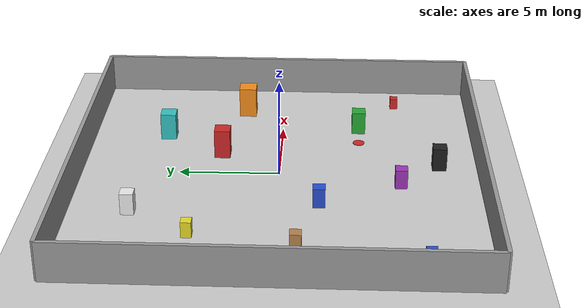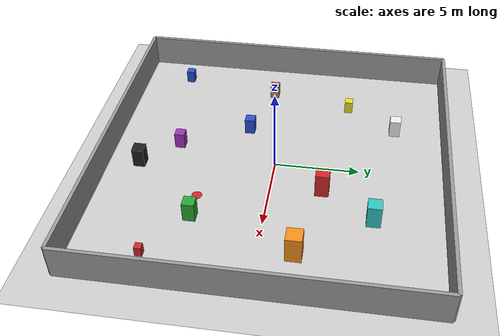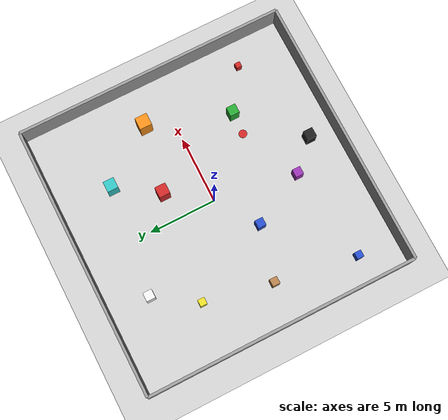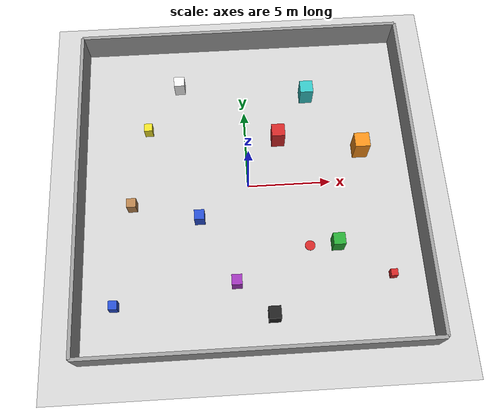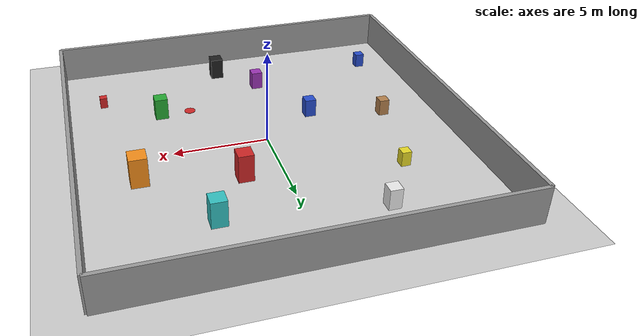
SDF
<?xml version="1.0" ?>
<sdf version="1.6">
  <world name="obstacle_world">

    <include>
      <uri>model://ground_plane</uri>
    </include>

    <include>
      <uri>model://sun</uri>
    </include>

    <physics name='default_physics' default='0' type='ode'>
      <gravity>0 0 -9.8066</gravity>
      <ode>
        <solver>
          <type>quick</type>
          <iters>10</iters>
          <sor>1.3</sor>
          <use_dynamic_moi_rescaling>0</use_dynamic_moi_rescaling>
        </solver>
        <constraints>
          <cfm>0</cfm>
          <erp>0.2</erp>
          <contact_max_correcting_vel>100</contact_max_correcting_vel>
          <contact_surface_layer>0.001</contact_surface_layer>
        </constraints>
      </ode>
      <max_step_size>0.004</max_step_size>
      <real_time_factor>1</real_time_factor>
      <real_time_update_rate>250</real_time_update_rate>
    </physics>

    <model name="north_wall">
      <pose>0 10 1 0 0 0</pose>
      <static>true</static>
      <link name="link">
        <collision name="collision">
          <geometry>
            <box>
              <size>20 0.2 2</size>
            </box>
          </geometry>
        </collision>
        <visual name="visual">
          <geometry>
            <box>
              <size>20 0.2 2</size>
            </box>
          </geometry>
          <material>
            <script>
              <name>Gazebo/Grey</name>
            </script>
          </material>
        </visual>
      </link>
    </model>

    <model name="south_wall">
      <pose>0 -10 1 0 0 0</pose>
      <static>true</static>
      <link name="link">
        <collision name="collision">
          <geometry>
            <box>
              <size>20 0.2 2</size>
            </box>
          </geometry>
        </collision>
        <visual name="visual">
          <geometry>
            <box>
              <size>20 0.2 2</size>
            </box>
          </geometry>
          <material>
            <script>
              <name>Gazebo/Grey</name>
            </script>
          </material>
        </visual>
      </link>
    </model>

    <model name="east_wall">
      <pose>10 0 1 0 0 0</pose>
      <static>true</static>
      <link name="link">
        <collision name="collision">
          <geometry>
            <box>
              <size>0.2 20 2</size>
            </box>
          </geometry>
        </collision>
        <visual name="visual">
          <geometry>
            <box>
              <size>0.2 20 2</size>
            </box>
          </geometry>
          <material>
            <script>
              <name>Gazebo/Grey</name>
            </script>
          </material>
        </visual>
      </link>
    </model>

    <model name="west_wall">
      <pose>-10 0 1 0 0 0</pose>
      <static>true</static>
      <link name="link">
        <collision name="collision">
          <geometry>
            <box>
              <size>0.2 20 2</size>
            </box>
          </geometry>
        </collision>
        <visual name="visual">
          <geometry>
            <box>
              <size>0.2 20 2</size>
            </box>
          </geometry>
          <material>
            <script>
              <name>Gazebo/Grey</name>
            </script>
          </material>
        </visual>
      </link>
    </model>

    <model name="obstacle_1">
      <pose>2 3 0.75 0 0 0</pose>
      <static>true</static>
      <link name="link">
        <collision name="collision">
          <geometry>
            <box>
              <size>0.8 0.8 1.5</size>
            </box>
          </geometry>
        </collision>
        <visual name="visual">
          <geometry>
            <box>
              <size>0.8 0.8 1.5</size>
            </box>
          </geometry>
          <material>
            <script>
              <name>Gazebo/Red</name>
            </script>
          </material>
        </visual>
      </link>
    </model>

    <model name="obstacle_2">
      <pose>-3 -2 0.5 0 0 0</pose>
      <static>true</static>
      <link name="link">
        <collision name="collision">
          <geometry>
            <box>
              <size>0.6 0.6 1.0</size>
            </box>
          </geometry>
        </collision>
        <visual name="visual">
          <geometry>
            <box>
              <size>0.6 0.6 1.0</size>
            </box>
          </geometry>
          <material>
            <script>
              <name>Gazebo/Blue</name>
            </script>
          </material>
        </visual>
      </link>
    </model>

    <model name="obstacle_3">
      <pose>5 -4 0.6 0 0 0</pose>
      <static>true</static>
      <link name="link">
        <collision name="collision">
          <geometry>
            <box>
              <size>0.7 0.7 1.2</size>
            </box>
          </geometry>
        </collision>
        <visual name="visual">
          <geometry>
            <box>
              <size>0.7 0.7 1.2</size>
            </box>
          </geometry>
          <material>
            <script>
              <name>Gazebo/Green</name>
            </script>
          </material>
        </visual>
      </link>
    </model>

    <model name="obstacle_4">
      <pose>-6 4 0.4 0 0 0</pose>
      <static>true</static>
      <link name="link">
        <collision name="collision">
          <geometry>
            <box>
              <size>0.5 0.5 0.8</size>
            </box>
          </geometry>
        </collision>
        <visual name="visual">
          <geometry>
            <box>
              <size>0.5 0.5 0.8</size>
            </box>
          </geometry>
          <material>
            <script>
              <name>Gazebo/Yellow</name>
            </script>
          </material>
        </visual>
      </link>
    </model>

    <model name="obstacle_5">
      <pose>7 2 0.8 0 0 0</pose>
      <static>true</static>
      <link name="link">
        <collision name="collision">
          <geometry>
            <box>
              <size>0.9 0.9 1.6</size>
            </box>
          </geometry>
        </collision>
        <visual name="visual">
          <geometry>
            <box>
              <size>0.9 0.9 1.6</size>
            </box>
          </geometry>
          <material>
            <script>
              <name>Gazebo/Orange</name>
            </script>
          </material>
        </visual>
      </link>
    </model>

    <model name="obstacle_6">
      <pose>-1 -6 0.5 0 0 0</pose>
      <static>true</static>
      <link name="link">
        <collision name="collision">
          <geometry>
            <box>
              <size>0.6 0.6 1.0</size>
            </box>
          </geometry>
        </collision>
        <visual name="visual">
          <geometry>
            <box>
              <size>0.6 0.6 1.0</size>
            </box>
          </geometry>
          <material>
            <script>
              <name>Gazebo/Purple</name>
            </script>
          </material>
        </visual>
      </link>
    </model>

    <model name="obstacle_7">
      <pose>4 6 0.7 0 0 0</pose>
      <static>true</static>
      <link name="link">
        <collision name="collision">
          <geometry>
            <box>
              <size>0.8 0.8 1.4</size>
            </box>
          </geometry>
        </collision>
        <visual name="visual">
          <geometry>
            <box>
              <size>0.8 0.8 1.4</size>
            </box>
          </geometry>
          <material>
            <script>
              <name>Gazebo/Turquoise</name>
            </script>
          </material>
        </visual>
      </link>
    </model>

    <model name="obstacle_8">
      <pose>-7 -1 0.45 0 0 0</pose>
      <static>true</static>
      <link name="link">
        <collision name="collision">
          <geometry>
            <box>
              <size>0.55 0.55 0.9</size>
            </box>
          </geometry>
        </collision>
        <visual name="visual">
          <geometry>
            <box>
              <size>0.55 0.55 0.9</size>
            </box>
          </geometry>
          <material>
            <script>
              <name>Gazebo/Wood</name>
            </script>
          </material>
        </visual>
      </link>
    </model>

    <model name="obstacle_9">
      <pose>1 -8 0.6 0 0 0</pose>
      <static>true</static>
      <link name="link">
        <collision name="collision">
          <geometry>
            <box>
              <size>0.7 0.7 1.2</size>
            </box>
          </geometry>
        </collision>
        <visual name="visual">
          <geometry>
            <box>
              <size>0.7 0.7 1.2</size>
            </box>
          </geometry>
          <material>
            <script>
              <name>Gazebo/Black</name>
            </script>
          </material>
        </visual>
      </link>
    </model>

    <model name="obstacle_10">
      <pose>-4 7 0.55 0 0 0</pose>
      <static>true</static>
      <link name="link">
        <collision name="collision">
          <geometry>
            <box>
              <size>0.65 0.65 1.1</size>
            </box>
          </geometry>
        </collision>
        <visual name="visual">
          <geometry>
            <box>
              <size>0.65 0.65 1.1</size>
            </box>
          </geometry>
          <material>
            <script>
              <name>Gazebo/White</name>
            </script>
          </material>
        </visual>
      </link>
    </model>

    <model name="obstacle_11">
      <pose>8 -6 0.3 0 0 0</pose>
      <static>true</static>
      <link name="link">
        <collision name="collision">
          <geometry>
            <box>
              <size>0.4 0.4 0.6</size>
            </box>
          </geometry>
        </collision>
        <visual name="visual">
          <geometry>
            <box>
              <size>0.4 0.4 0.6</size>
            </box>
          </geometry>
          <material>
            <script>
              <name>Gazebo/Red</name>
            </script>
          </material>
        </visual>
      </link>
    </model>

    <model name="obstacle_12">
      <pose>-8 -7 0.4 0 0 0</pose>
      <static>true</static>
      <link name="link">
        <collision name="collision">
          <geometry>
            <box>
              <size>0.5 0.5 0.8</size>
            </box>
          </geometry>
        </collision>
        <visual name="visual">
          <geometry>
            <box>
              <size>0.5 0.5 0.8</size>
            </box>
          </geometry>
          <material>
            <script>
              <name>Gazebo/Blue</name>
            </script>
          </material>
        </visual>
      </link>
    </model>

    <model name="target_marker">
      <pose>3.4 -4.0 0.1 0 0 0</pose>
      <static>true</static>
      <link name="link">
        <collision name="collision">
          <geometry>
            <cylinder>
              <radius>0.3</radius>
              <length>0.02</length>
            </cylinder>
          </geometry>
        </collision>
        <visual name="visual">
          <geometry>
            <cylinder>
              <radius>0.3</radius>
              <length>0.02</length>
            </cylinder>
          </geometry>
          <material>
            <script>
              <name>Gazebo/Red</name>
            </script>
          </material>
        </visual>
      </link>
    </model>

    <light name='user_directional_light_0' type='directional'>
      <pose frame=''>0 0 10 0 -0 0</pose>
      <diffuse>0.5 0.5 0.5 1</diffuse>
      <specular>0.1 0.1 0.1 1</specular>
      <direction>0.1 0.1 -0.9</direction>
      <attenuation>
        <range>20</range>
        <constant>0.5</constant>
        <linear>0.01</linear>
        <quadratic>0.001</quadratic>
      </attenuation>
      <cast_shadows>1</cast_shadows>
    </light>

    <scene>
      <ambient>0.4 0.4 0.4 1</ambient>
      <background>0.7 0.7 0.7 1</background>
      <shadows>true</shadows>
    </scene>

    <gui fullscreen='0'>
      <camera name='user_camera'>
        <pose frame=''>0 0 25 0 1.5708 0</pose>
        <view_controller>orbit</view_controller>
        <projection_type>perspective</projection_type>
      </camera>
    </gui>

  </world>
</sdf>
